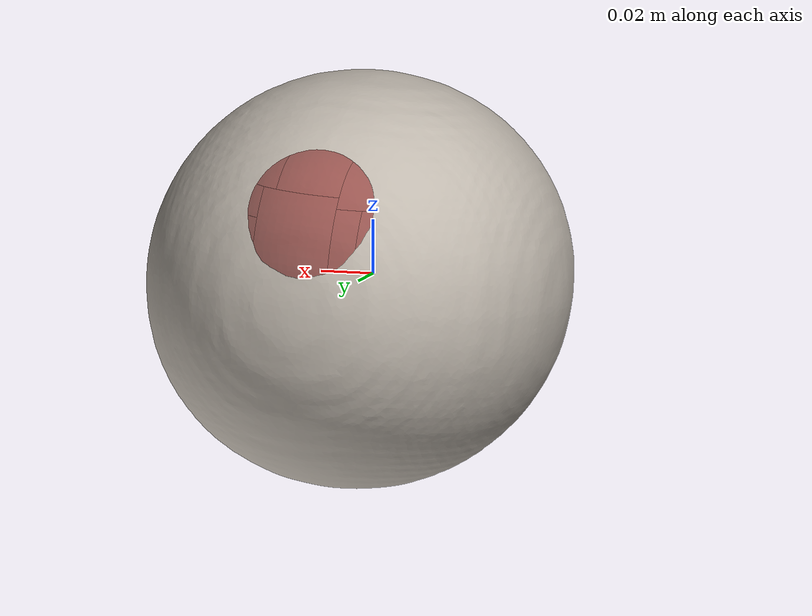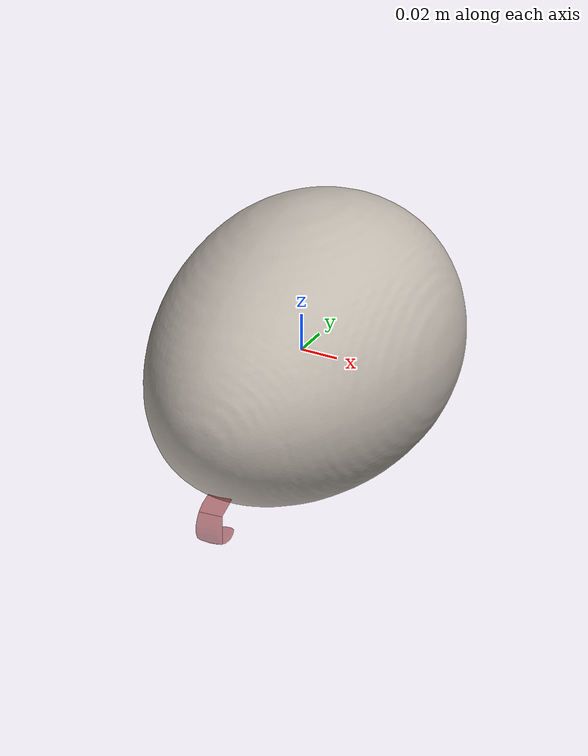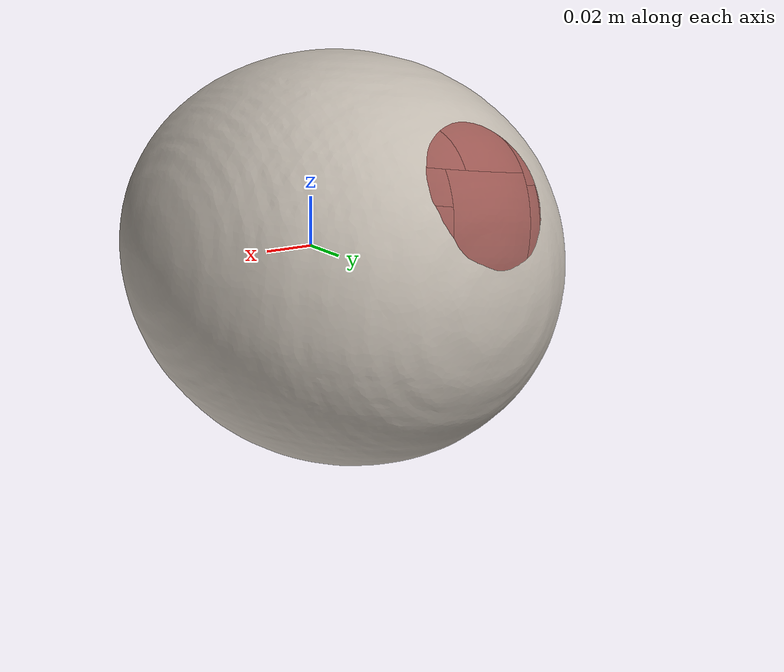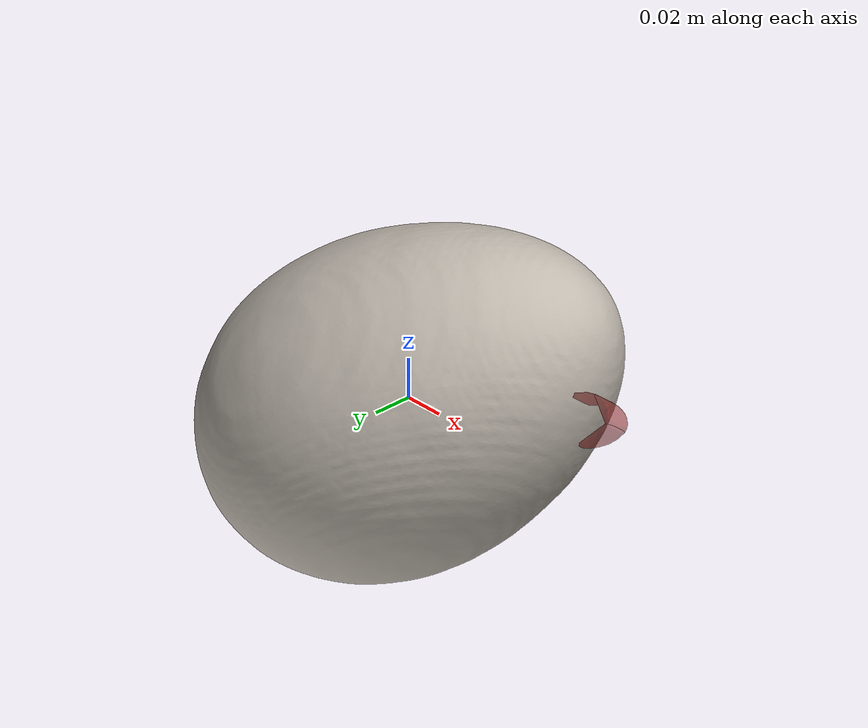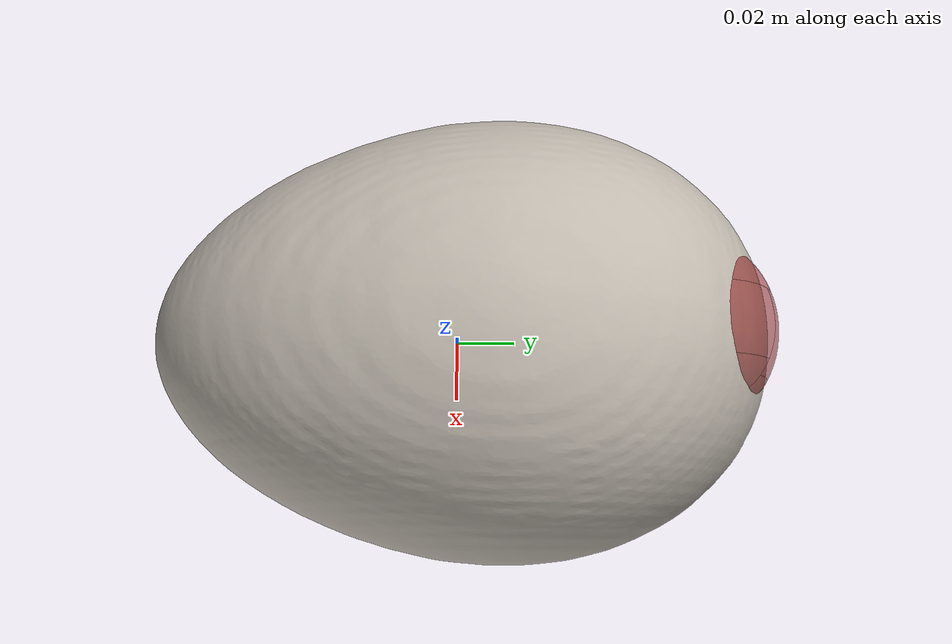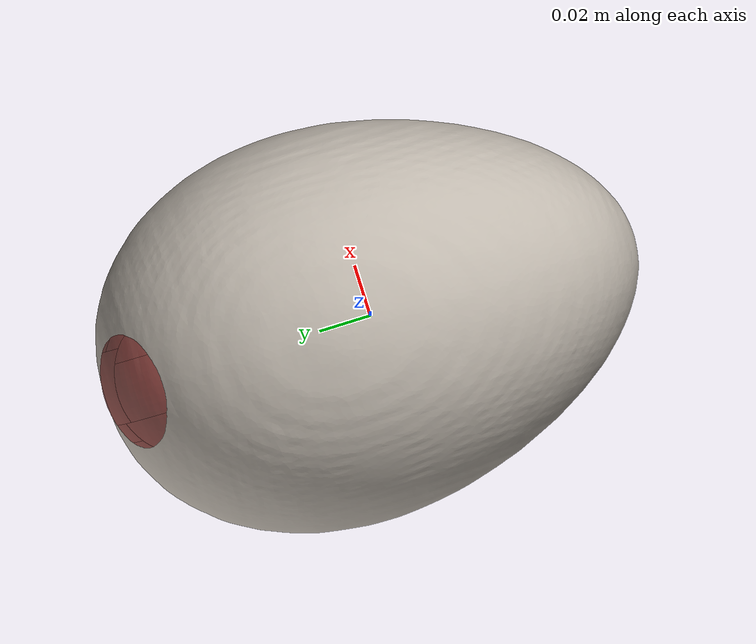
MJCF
<mujoco model="ladle_2">
  <asset>
    <mesh file="visual/model_normalized_0.obj" name="model_normalized_0_vis" scale="0.21000000000000002 0.21000000000000002 0.21000000000000002" refquat="-0.4659927039135267 0.48290426618514415 -0.5298591029296221 0.5185591582858853"/>
    <texture type="2d" name="image0" file="visual/image0.png"/>
    <material name="Material_25" texture="image0" specular="0.9" shininess="0.85"/>
    <mesh file="collision/collision_mesh_collision_0.obj" name="ladle_collision_mesh_0" scale="0.21000000000000002 0.21000000000000002 0.21000000000000002" refquat="-0.4659927039135267 0.48290426618514415 -0.5298591029296221 0.5185591582858853"/>
    <mesh file="collision/collision_mesh_collision_1.obj" name="ladle_collision_mesh_1" scale="0.21000000000000002 0.21000000000000002 0.21000000000000002" refquat="-0.4659927039135267 0.48290426618514415 -0.5298591029296221 0.5185591582858853"/>
    <mesh file="collision/collision_mesh_collision_2.obj" name="ladle_collision_mesh_2" scale="0.21000000000000002 0.21000000000000002 0.21000000000000002" refquat="-0.4659927039135267 0.48290426618514415 -0.5298591029296221 0.5185591582858853"/>
    <mesh file="collision/collision_mesh_collision_3.obj" name="ladle_collision_mesh_3" scale="0.21000000000000002 0.21000000000000002 0.21000000000000002" refquat="-0.4659927039135267 0.48290426618514415 -0.5298591029296221 0.5185591582858853"/>
    <mesh file="collision/collision_mesh_collision_4.obj" name="ladle_collision_mesh_4" scale="0.21000000000000002 0.21000000000000002 0.21000000000000002" refquat="-0.4659927039135267 0.48290426618514415 -0.5298591029296221 0.5185591582858853"/>
    <mesh file="collision/collision_mesh_collision_5.obj" name="ladle_collision_mesh_5" scale="0.21000000000000002 0.21000000000000002 0.21000000000000002" refquat="-0.4659927039135267 0.48290426618514415 -0.5298591029296221 0.5185591582858853"/>
    <mesh file="collision/collision_mesh_collision_6.obj" name="ladle_collision_mesh_6" scale="0.21000000000000002 0.21000000000000002 0.21000000000000002" refquat="-0.4659927039135267 0.48290426618514415 -0.5298591029296221 0.5185591582858853"/>
    <mesh file="collision/collision_mesh_collision_7.obj" name="ladle_collision_mesh_7" scale="0.21000000000000002 0.21000000000000002 0.21000000000000002" refquat="-0.4659927039135267 0.48290426618514415 -0.5298591029296221 0.5185591582858853"/>
    <mesh file="collision/collision_mesh_collision_8.obj" name="ladle_collision_mesh_8" scale="0.21000000000000002 0.21000000000000002 0.21000000000000002" refquat="-0.4659927039135267 0.48290426618514415 -0.5298591029296221 0.5185591582858853"/>
    <mesh file="collision/collision_mesh_collision_9.obj" name="ladle_collision_mesh_9" scale="0.21000000000000002 0.21000000000000002 0.21000000000000002" refquat="-0.4659927039135267 0.48290426618514415 -0.5298591029296221 0.5185591582858853"/>
    <mesh file="collision/collision_mesh_collision_10.obj" name="ladle_collision_mesh_10" scale="0.21000000000000002 0.21000000000000002 0.21000000000000002" refquat="-0.4659927039135267 0.48290426618514415 -0.5298591029296221 0.5185591582858853"/>
    <mesh file="collision/collision_mesh_collision_11.obj" name="ladle_collision_mesh_11" scale="0.21000000000000002 0.21000000000000002 0.21000000000000002" refquat="-0.4659927039135267 0.48290426618514415 -0.5298591029296221 0.5185591582858853"/>
    <mesh file="collision/collision_mesh_collision_12.obj" name="ladle_collision_mesh_12" scale="0.21000000000000002 0.21000000000000002 0.21000000000000002" refquat="-0.4659927039135267 0.48290426618514415 -0.5298591029296221 0.5185591582858853"/>
    <mesh file="collision/collision_mesh_collision_13.obj" name="ladle_collision_mesh_13" scale="0.21000000000000002 0.21000000000000002 0.21000000000000002" refquat="-0.4659927039135267 0.48290426618514415 -0.5298591029296221 0.5185591582858853"/>
    <mesh file="collision/collision_mesh_collision_14.obj" name="ladle_collision_mesh_14" scale="0.21000000000000002 0.21000000000000002 0.21000000000000002" refquat="-0.4659927039135267 0.48290426618514415 -0.5298591029296221 0.5185591582858853"/>
    <mesh file="collision/collision_mesh_collision_15.obj" name="ladle_collision_mesh_15" scale="0.21000000000000002 0.21000000000000002 0.21000000000000002" refquat="-0.4659927039135267 0.48290426618514415 -0.5298591029296221 0.5185591582858853"/>
  </asset>
  <custom><text name="material_gt" data="metal"/></custom>
  <default>
    <default class="region">
      <geom group="1" conaffinity="0" contype="0" rgba="0 1 0 0"/>
    </default>
    <default class="collision">
      <geom group="0" rgba="0.5 0 0 0.5" density="1000.0"/>
    </default>
  </default>
  <worldbody>
    <body>
      <body name="object">
        <geom solimp="0.998 0.998 0.001" solref="0.001 1" density="100" friction="0.95 0.3 0.1" type="mesh" mesh="model_normalized_0_vis" conaffinity="0" contype="0" group="1" material="Material_25"/>
        <geom class="region" name="reg_bbox" type="box" pos="-0.002322412601727338 0.0003964161094375146 -0.00020412027203505712" size="0.03174765281658028 0.10405176593966314 0.055076893898203264"/>
        <geom mesh="ladle_collision_mesh_0" type="mesh" class="collision"/>
        <geom mesh="ladle_collision_mesh_1" type="mesh" class="collision"/>
        <geom mesh="ladle_collision_mesh_2" type="mesh" class="collision"/>
        <geom mesh="ladle_collision_mesh_3" type="mesh" class="collision"/>
        <geom mesh="ladle_collision_mesh_4" type="mesh" class="collision"/>
        <geom mesh="ladle_collision_mesh_5" type="mesh" class="collision"/>
        <geom mesh="ladle_collision_mesh_6" type="mesh" class="collision"/>
        <geom mesh="ladle_collision_mesh_7" type="mesh" class="collision"/>
        <geom mesh="ladle_collision_mesh_8" type="mesh" class="collision"/>
        <geom mesh="ladle_collision_mesh_9" type="mesh" class="collision"/>
        <geom mesh="ladle_collision_mesh_10" type="mesh" class="collision"/>
        <geom mesh="ladle_collision_mesh_11" type="mesh" class="collision"/>
        <geom mesh="ladle_collision_mesh_12" type="mesh" class="collision"/>
        <geom mesh="ladle_collision_mesh_13" type="mesh" class="collision"/>
        <geom mesh="ladle_collision_mesh_14" type="mesh" class="collision"/>
        <geom mesh="ladle_collision_mesh_15" type="mesh" class="collision"/>
      </body>
    </body>
  </worldbody>
</mujoco>
